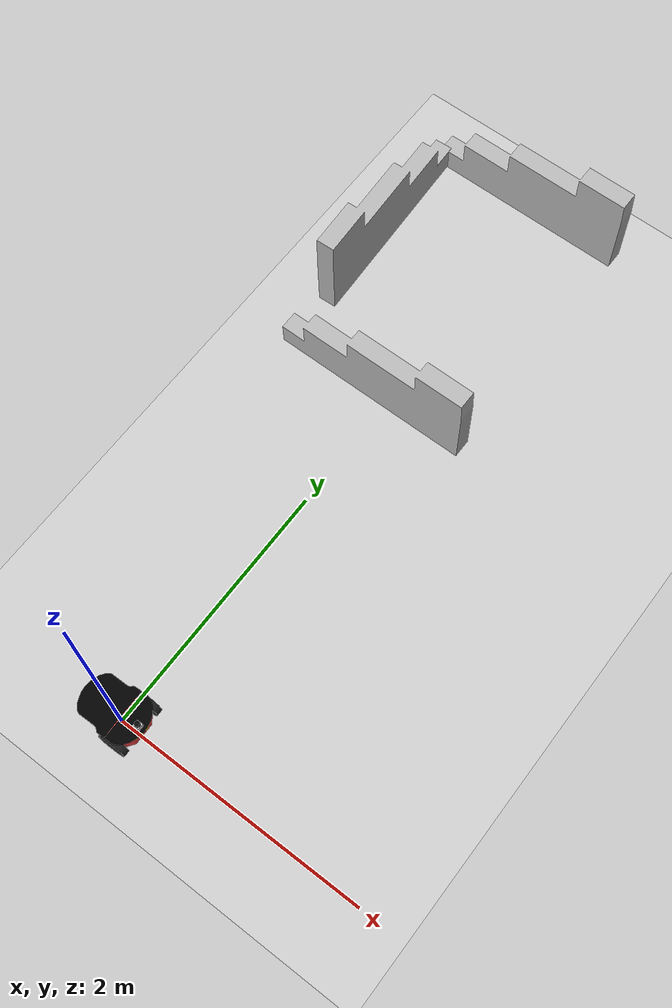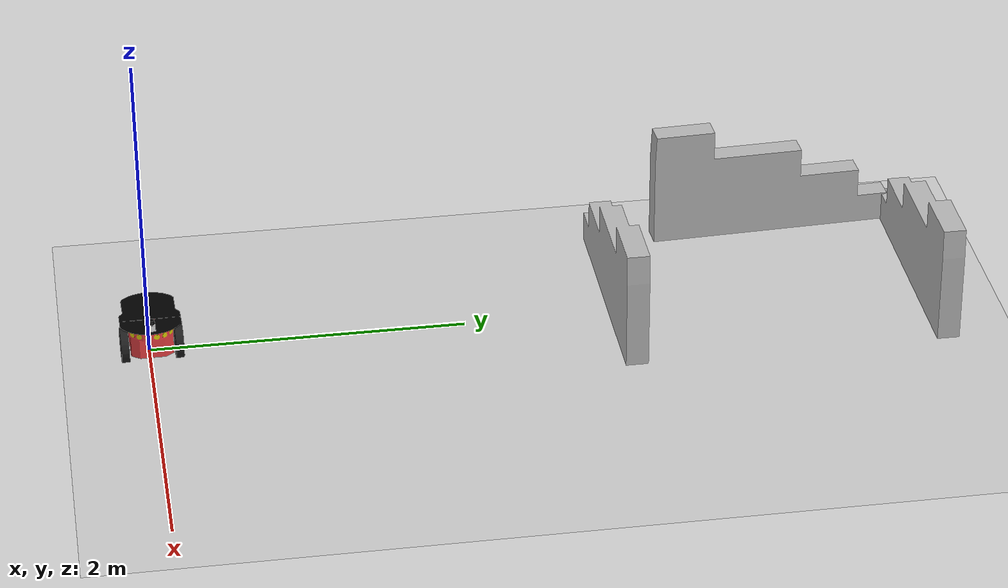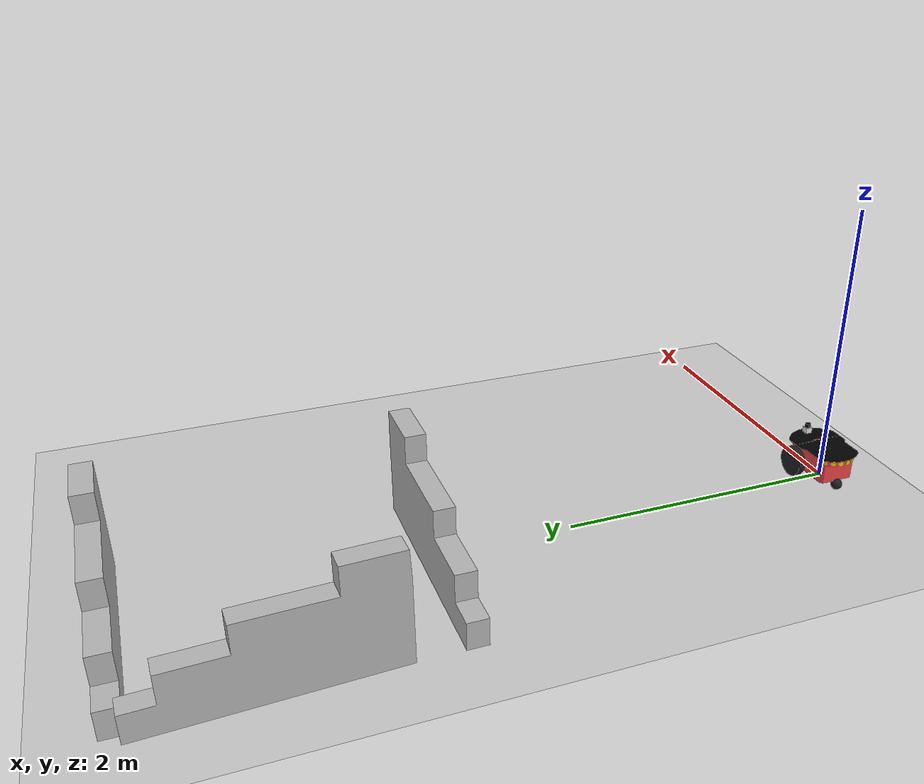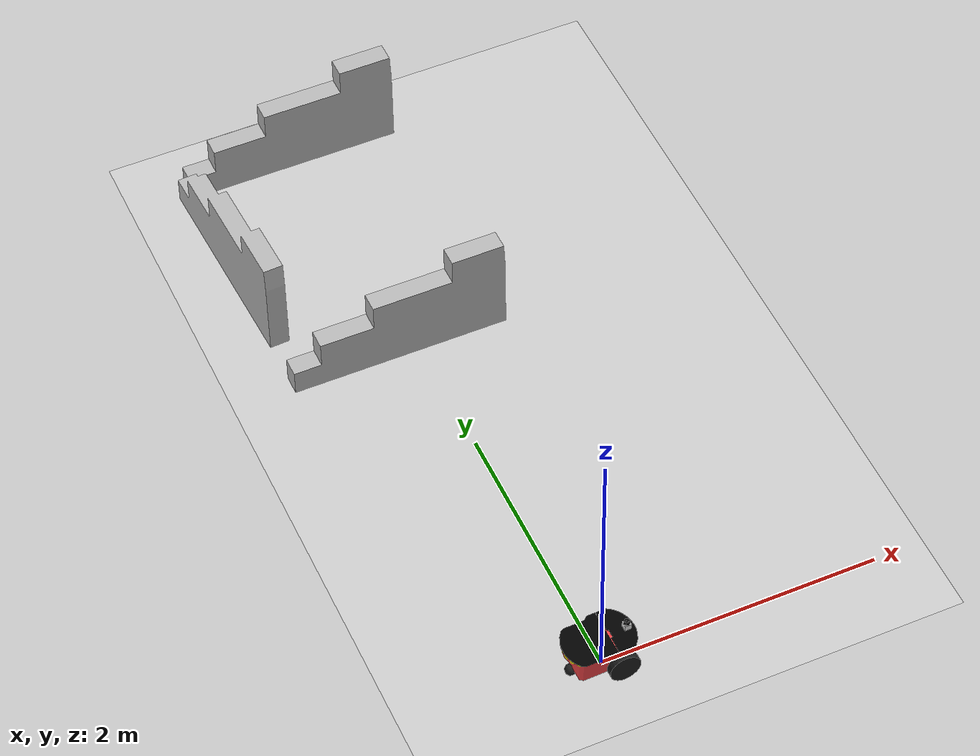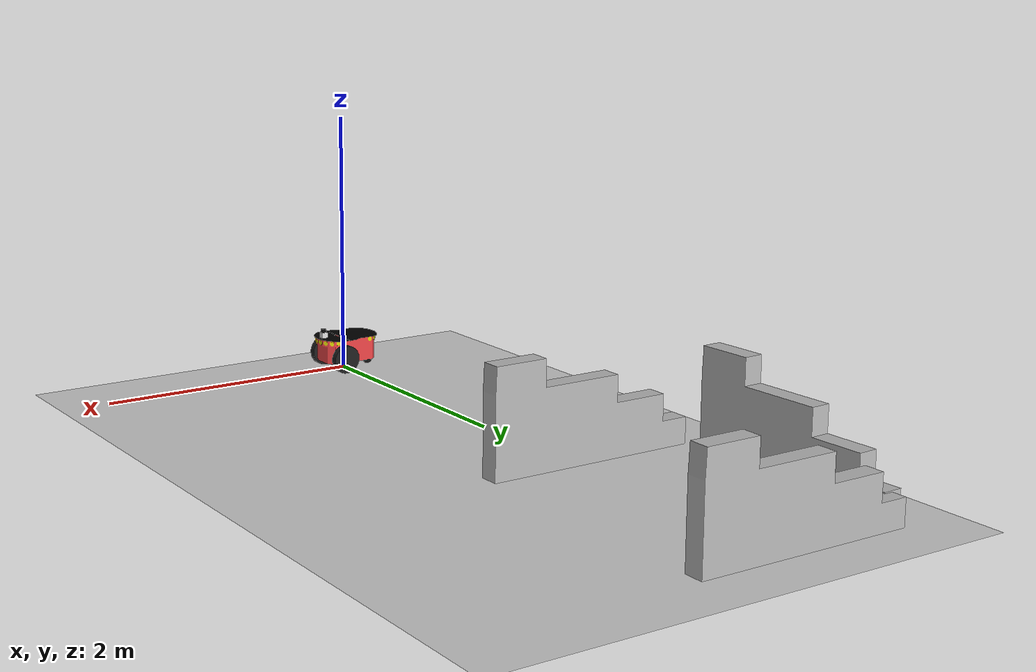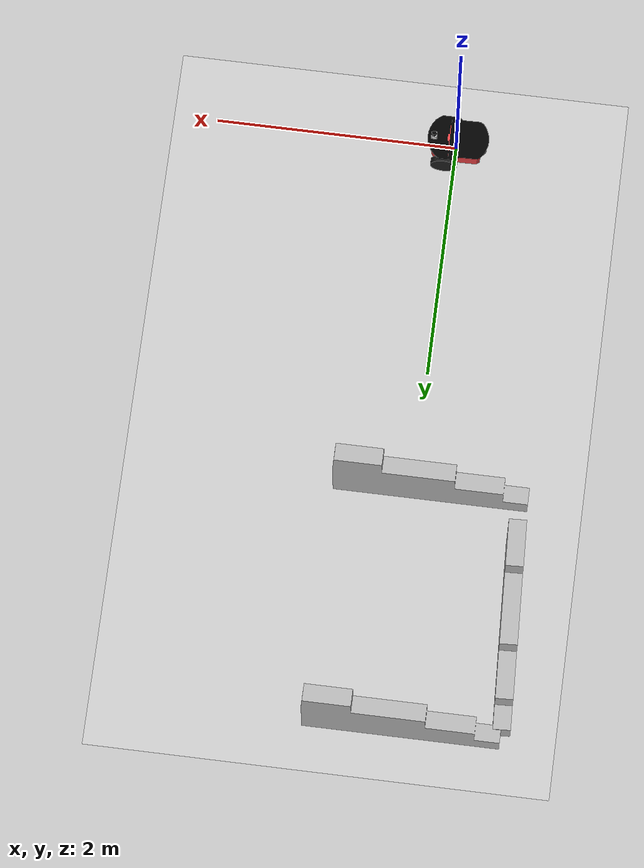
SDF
<sdf version="1.4">
 <world name="default">
  <light name="sun" type="directional">
   <pose>0 0 10 0 -0 0</pose>
   <diffuse>0.8 0.8 0.8 1</diffuse>
   <specular>0.2 0.2 0.2 1</specular>
   <attenuation>
    <range>1000</range>
    <constant>0.9</constant>
    <linear>0.01</linear>
    <quadratic>0.001</quadratic>
   </attenuation>
   <direction>-0.5 0.1 -0.9</direction>
  </light>
  <model name="ground_plane">
   <static>1</static>
   <link name="link">
    <collision name="collision">
     <geometry><plane><normal>0 0 1</normal><size>100 100</size></plane></geometry>
     <surface><friction><ode><mu>100</mu><mu2>50</mu2></ode></friction></surface>
    </collision>
    <visual name="visual">
     <cast_shadows>0</cast_shadows>
     <geometry><plane><normal>0 0 1</normal><size>100 100</size></plane></geometry>
     <material>
      <script><uri>file://media/materials/scripts/gazebo.material</uri><name>Gazebo/Grey</name></script>
     </material>
    </visual>
    <velocity_decay><linear>0</linear><angular>0</angular></velocity_decay>
   </link>
  </model>
  <physics type="ode">
   <max_step_size>0.001</max_step_size>
   <real_time_factor>1</real_time_factor>
   <real_time_update_rate>1000</real_time_update_rate>
   <gravity>0 0 -9.8</gravity>
  </physics>
  <scene><ambient>0.4 0.4 0.4 1</ambient><background>0.7 0.7 0.7 1</background><shadows>1</shadows></scene>
  <spherical_coordinates>
   <surface_model>EARTH_WGS84</surface_model>
   <latitude_deg>0</latitude_deg>
   <longitude_deg>0</longitude_deg>
   <elevation>0</elevation>
   <heading_deg>0</heading_deg>
  </spherical_coordinates>
  <model name="pioneer2dx">
   <link name="chassis">
    <pose>0 0 0.16 0 -0 0</pose>
    <inertial>
     <mass>5.67</mass>
     <inertia><ixx>0.07</ixx><iyy>0.08</iyy><izz>0.1</izz><ixy>0</ixy><ixz>0</ixz><iyz>0</iyz></inertia>
    </inertial>
    <collision name="collision"><geometry><box><size>0.445 0.277 0.17</size></box></geometry></collision>
    <collision name="castor_collision">
     <pose>-0.2 0 -0.12 0 -0 0</pose>
     <geometry><sphere><radius>0.04</radius></sphere></geometry>
     <surface><friction><ode><mu>0</mu><mu2>0</mu2><slip1>1</slip1><slip2>1</slip2></ode></friction></surface>
    </collision>
    <visual name="visual">
     <pose>0 0 0.04 0 -0 0</pose>
     <geometry><mesh><uri>model://pioneer2dx/meshes/chassis.dae</uri></mesh></geometry>
    </visual>
    <visual name="castor_visual">
     <pose>-0.2 0 -0.12 0 -0 0</pose>
     <geometry><sphere><radius>0.04</radius></sphere></geometry>
     <material>
      <script><uri>file://media/materials/scripts/gazebo.material</uri><name>Gazebo/FlatBlack</name></script>
     </material>
    </visual>
    <velocity_decay><linear>0</linear><angular>0</angular></velocity_decay>
   </link>
   <link name="right_wheel">
    <pose>0.1 -0.17 0.11 0 1.5707 1.5707</pose>
    <inertial>
     <mass>1.5</mass>
     <inertia><ixx>0.0051</ixx><iyy>0.0051</iyy><izz>0.009</izz><ixy>0</ixy><ixz>0</ixz><iyz>0</iyz></inertia>
    </inertial>
    <collision name="collision">
     <geometry><cylinder><radius>0.11</radius><length>0.05</length></cylinder></geometry>
     <surface>
      <friction><ode><mu>100000</mu><mu2>100000</mu2><slip1>0</slip1><slip2>0</slip2></ode></friction>
     </surface>
    </collision>
    <visual name="visual">
     <geometry><cylinder><radius>0.11</radius><length>0.05</length></cylinder></geometry>
     <material>
      <script><uri>file://media/materials/scripts/gazebo.material</uri><name>Gazebo/FlatBlack</name></script>
     </material>
    </visual>
    <velocity_decay><linear>0</linear><angular>0</angular></velocity_decay>
   </link>
   <link name="left_wheel">
    <pose>0.1 0.17 0.11 0 1.5707 1.5707</pose>
    <inertial>
     <mass>1.5</mass>
     <inertia><ixx>0.0051</ixx><iyy>0.0051</iyy><izz>0.009</izz><ixy>0</ixy><ixz>0</ixz><iyz>0</iyz></inertia>
    </inertial>
    <collision name="collision">
     <geometry><cylinder><radius>0.11</radius><length>0.05</length></cylinder></geometry>
     <surface>
      <friction><ode><mu>100000</mu><mu2>100000</mu2><slip1>0</slip1><slip2>0</slip2></ode></friction>
     </surface>
    </collision>
    <visual name="visual">
     <geometry><cylinder><radius>0.11</radius><length>0.05</length></cylinder></geometry>
     <material>
      <script><uri>file://media/materials/scripts/gazebo.material</uri><name>Gazebo/FlatBlack</name></script>
     </material>
    </visual>
    <velocity_decay><linear>0</linear><angular>0</angular></velocity_decay>
   </link>
   <joint name="left_wheel_hinge" type="revolute">
    <pose>0 0 -0.03 0 -0 0</pose>
    <child>left_wheel</child>
    <parent>chassis</parent>
    <axis><xyz>0 1 0</xyz><limit><lower>-1e+16</lower><upper>1e+16</upper></limit></axis>
   </joint>
   <joint name="right_wheel_hinge" type="revolute">
    <pose>0 0 0.03 0 -0 0</pose>
    <child>right_wheel</child>
    <parent>chassis</parent>
    <axis><xyz>0 1 0</xyz><limit><lower>-1e+16</lower><upper>1e+16</upper></limit></axis>
   </joint>
   <plugin name="differential_drive_controller" filename="libgazebo_ros_diff_drive.so">
    <alwaysOn>true</alwaysOn>
    <updateRate>100</updateRate>
    <leftJoint>left_wheel_hinge</leftJoint>
    <rightJoint>right_wheel_hinge</rightJoint>
    <wheelSeparation>0.39</wheelSeparation>
    <wheelDiameter>0.15</wheelDiameter>
    <torque>5</torque>
    <commandTopic>/cmd_vel</commandTopic>
    <odometryTopic>/odom</odometryTopic>
    <odometryFrame>/odom</odometryFrame>
    <robotBaseFrame>/base_link</robotBaseFrame>
   </plugin>
   <link name="hokuyo::link">
    <inertial>
     <mass>0.1</mass>
     <inertia><ixx>1</ixx><ixy>0</ixy><ixz>0</ixz><iyy>1</iyy><iyz>0</iyz><izz>1</izz></inertia>
    </inertial>
    <visual name="visual"><geometry><mesh><uri>model://hokuyo/meshes/hokuyo.dae</uri></mesh></geometry></visual>
    <collision name="collision-base">
     <pose>0 0 -0.0145 0 -0 0</pose>
     <geometry><box><size>0.05 0.05 0.041</size></box></geometry>
    </collision>
    <collision name="collision-top">
     <pose>0 0 0.0205 0 -0 0</pose>
     <geometry><cylinder><radius>0.021</radius><length>0.029</length></cylinder></geometry>
    </collision>
    <sensor name="laser" type="ray">
     <pose>0.01 0 0.0175 0 -0 0</pose>
     <ray>
      <scan>
       <horizontal>
        <samples>640</samples>
        <resolution>1</resolution>
        <min_angle>-2.26889</min_angle>
        <max_angle>2.2689</max_angle>
       </horizontal>
      </scan>
      <range><min>0.08</min><max>10</max><resolution>0.01</resolution></range>
     </ray>
     <plugin name="gazebo_ros_head_hokuyo_controller" filename="libgazebo_ros_laser.so">
      <topicName>/scan</topicName>
      <frameName>laser</frameName>
     </plugin>
     <always_on>1</always_on>
     <update_rate>30</update_rate>
     <visualize>1</visualize>
    </sensor>
    <velocity_decay><linear>0</linear><angular>0</angular></velocity_decay>
    <pose>0.2 0 0.3 0 -0 0</pose>
   </link>
   <joint name="hokuyo_joint" type="revolute">
    <child>hokuyo::link</child>
    <parent>chassis</parent>
    <axis><xyz>0 0 1</xyz><limit><upper>0</upper><lower>0</lower></limit></axis>
   </joint>
   <pose>-0.013679 0.011671 -3e-06 -2.64698e-23 1.2e-05 0.016547</pose>
   <static>0</static>
  </model>
  <model name="block_wall">
   <pose>0 5 0.30924 0 -0 0</pose>
   <static>1</static>
   <link name="blocks">
    <collision name="collision">
     <geometry><mesh><uri>model://drc_practice_block_wall/meshes/block_wall.dae</uri></mesh></geometry>
     <surface>
      <bounce><restitution_coefficient>0</restitution_coefficient><threshold>100000</threshold></bounce>
      <friction><ode><mu>100</mu><mu2>50</mu2></ode></friction>
      <contact>
       <ode><soft_cfm>0</soft_cfm><soft_erp>0.2</soft_erp><max_vel>0</max_vel><min_depth>0</min_depth></ode>
      </contact>
     </surface>
    </collision>
    <visual name="visual">
     <geometry><mesh><uri>model://drc_practice_block_wall/meshes/block_wall.dae</uri></mesh></geometry>
    </visual>
    <velocity_decay><linear>0</linear><angular>0</angular></velocity_decay>
   </link>
  </model>
  <model name="block_wall_0">
   <pose>0 3 0.30924 0 -0 0</pose>
   <static>1</static>
   <link name="blocks">
    <collision name="collision">
     <geometry><mesh><uri>model://drc_practice_block_wall/meshes/block_wall.dae</uri></mesh></geometry>
     <surface>
      <bounce><restitution_coefficient>0</restitution_coefficient><threshold>100000</threshold></bounce>
      <friction><ode><mu>100</mu><mu2>50</mu2></ode></friction>
      <contact>
       <ode><soft_cfm>0</soft_cfm><soft_erp>0.2</soft_erp><max_vel>0</max_vel><min_depth>0</min_depth></ode>
      </contact>
     </surface>
    </collision>
    <visual name="visual">
     <geometry><mesh><uri>model://drc_practice_block_wall/meshes/block_wall.dae</uri></mesh></geometry>
    </visual>
    <velocity_decay><linear>0</linear><angular>0</angular></velocity_decay>
   </link>
  </model>
  <model name="block_wall_1">
   <pose>-0.905749 4.02058 0.317631 0 0 -1.52704</pose>
   <static>1</static>
   <link name="blocks">
    <collision name="collision">
     <geometry><mesh><uri>model://drc_practice_block_wall/meshes/block_wall.dae</uri></mesh></geometry>
     <surface>
      <bounce><restitution_coefficient>0</restitution_coefficient><threshold>100000</threshold></bounce>
      <friction><ode><mu>100</mu><mu2>50</mu2></ode></friction>
      <contact>
       <ode><soft_cfm>0</soft_cfm><soft_erp>0.2</soft_erp><max_vel>0</max_vel><min_depth>0</min_depth></ode>
      </contact>
     </surface>
    </collision>
    <visual name="visual">
     <geometry><mesh><uri>model://drc_practice_block_wall/meshes/block_wall.dae</uri></mesh></geometry>
    </visual>
    <velocity_decay><linear>0</linear><angular>0</angular></velocity_decay>
   </link>
  </model>
 </world>
</sdf>
